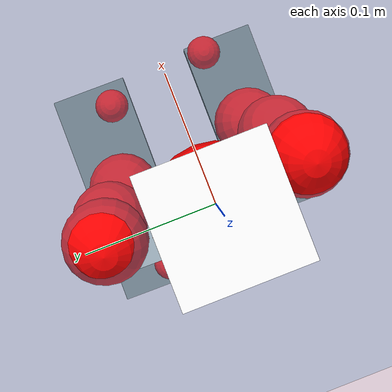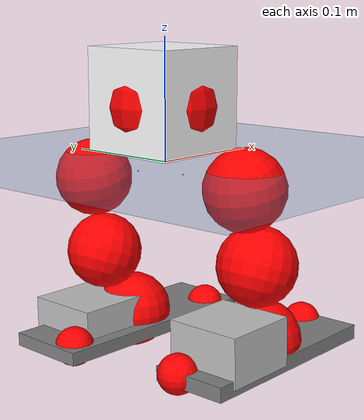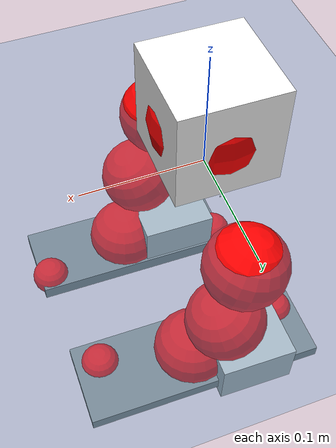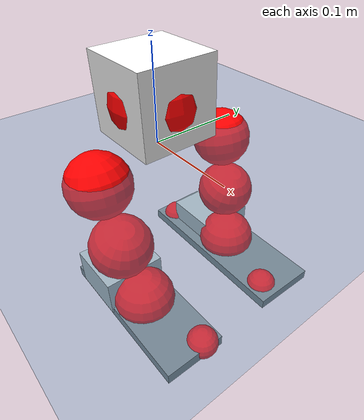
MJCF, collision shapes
<mujoco model="pi_12dof_release_v1">
  <compiler angle="radian" assetdir="assets" balanceinertia="true" inertiafromgeom="false"/>

  <option timestep="0.005" density="1.2" viscosity="2e-05"/>

  <size nkey="1"/>

  <visual>
    <quality shadowsize="8192"/>
    <map shadowclip="0.5"/>
  </visual>

  <default>
    <default class="/">
      <joint armature="0.01" damping="0.01" frictionloss="0.01"/>
      <geom contype="0" conaffinity="0" group="1" solref="-1000 -80"/>
      <site size="0.01 0.005 0.005" group="5"/>
      <general forcelimited="true" biastype="affine" gainprm="20" biasprm="0 -20 -0.5"/>
      <default class="foot">
        <geom size="0.0845 0.036 0.005" type="box" condim="6" group="4" priority="1" friction="0.9 0.2 0.2" solimp="0.015 1 0.005"/>
      </default>
      <default class="reward_collision_sphere">
        <geom group="5" rgba="1 0 0 1"/>
      </default>
    </default>
  </default>

  <asset>
    <texture type="skybox" colorspace="auto" name="//unnamed_texture_0" builtin="gradient" rgb1="0.95 0.95 0.95" rgb2="0.95 0.95 0.95" width="100" height="600"/>
    <texture type="2d" colorspace="auto" name="texplane" builtin="checker" rgb1="0.345 0.575 0.748" rgb2="0.345 0.575 0.748" markrgb="1 1 1" width="512" height="512"/>
    <material name="MatPlane" class="/" texture="texplane" texuniform="true" texrepeat="2 2" specular="0.9"/>
    <mesh name="baselink_1" class="/" file="baselink_1.STL"/>
    <mesh name="r_hip_pitch_link" class="/" file="r_hip_pitch_link.STL"/>
    <mesh name="r_hip_roll_link" class="/" file="r_hip_roll_link.STL"/>
    <mesh name="r_thigh_link" class="/" file="r_thigh_link.STL"/>
    <mesh name="r_calf_link" class="/" file="r_calf_link.STL"/>
    <mesh name="r_ankle_pitch_link" class="/" file="r_ankle_pitch_link.STL"/>
    <mesh name="r_ankle_roll_link" class="/" file="r_ankle_roll_link.STL"/>
    <mesh name="l_hip_pitch_link" class="/" file="l_hip_pitch_link.STL"/>
    <mesh name="l_hip_roll_link" class="/" file="l_hip_roll_link.STL"/>
    <mesh name="l_thigh_link" class="/" file="l_thigh_link.STL"/>
    <mesh name="l_calf_link" class="/" file="l_calf_link.STL"/>
    <mesh name="l_ankle_pitch_link" class="/" file="l_ankle_pitch_link.STL"/>
    <mesh name="l_ankle_roll_link" class="/" file="l_ankle_roll_link.STL"/>
  </asset>

  <worldbody>
    <geom name="floor" class="/" size="100 100 0.125" type="plane" group="0" material="MatPlane"/>
    <light name="toplight_shadow" class="/" pos="0 0 5" dir="0.0990148 0.0990148 -0.990148" type="directional" ambient="0.04 0.04 0.04" diffuse="0.55 0.55 0.55" specular="0.12 0.12 0.12"/>
    <light name="toplight_fill" class="/" pos="0 0 5" dir="0.0990148 0.0990148 -0.990148" type="directional" castshadow="false" ambient="0.04 0.04 0.04" diffuse="0.3 0.3 0.3" specular="0.08 0.08 0.08"/>
    <body name="trunk" pos="-0.00140821 0.00123206 0.0136749" quat="0.99998 0.00504427 -0.00365098 -0.00112755">
      <inertial pos="0.00242749 -0.0109026 0.0201094" quat="0.723565 0.0389139 0.0435726 0.687779" mass="1.13775" diaginertia="0.0210334 0.00280594 7.41966e-05"/>
      <joint name="//unnamed_joint_0" type="free"/>
      <geom name="//unnamed_geom_1" class="/" type="mesh" density="0" rgba="1 1 1 1" mesh="baselink_1"/>
      <geom name="//unnamed_geom_2" class="/" size="0.0415345 0.0415345 0.0415345" pos="0 0 0.037178" type="box" rgba="1 1 1 1"/>
      <geom name="//unnamed_geom_3" class="reward_collision_sphere" size="0.045688" pos="0 0 0.0325308"/>
      <site name="imu" class="/" pos="-0.0124769 -0.0387346 0.0512337" size="0.00830691"/>
      <camera name="track" class="/" pos="0 -1.63692 0" quat="0.707107 0.707107 0 0" mode="trackcom"/>
      <camera name="ego_camera" class="/" pos="0.0906663 0 0.0836506" quat="-0.5 -0.5 0.5 0.5"/>
      <body name="r_hip_pitch_link" pos="-0.00232969 -0.0237599 -0.0207258" quat="0.99219 -4.70676e-05 -0.124734 -5.12752e-05">
        <inertial pos="0.0132217 -0.0455608 0.0131046" quat="-0.0787315 0.717858 -0.0502714 0.689894" mass="0.229486" diaginertia="0.000269848 4.13791e-05 1.96814e-06"/>
        <joint name="r_hip_pitch_joint" class="/" pos="0 0 0" axis="-0.0255502 -0.999664 -0.00443509" stiffness="0.0105742" range="-1.79753 1.32062" armature="0.00821508" damping="0.0184663" frictionloss="0.00746274"/>
        <geom name="//unnamed_geom_4" class="/" type="mesh" density="0" rgba="0.75294 0.75294 0.75294 1" mesh="r_hip_pitch_link"/>
        <geom name="//unnamed_geom_5" class="/" size="0.000415345 0.000415345 0.000415345" type="box" rgba="0.75294 0.75294 0.75294 1"/>
        <body name="r_hip_roll_link" pos="0.0109143 -0.0524821 -0.0100184" quat="1 -6.67678e-05 -0.000190467 -0.000793157">
          <inertial pos="0.00129153 0.000498504 -0.0284009" quat="0.720942 -0.080133 -0.0839427 0.68321" mass="0.244893" diaginertia="0.000953895 0.000116326 3.60898e-06"/>
          <joint name="r_hip_roll_joint" class="/" pos="0 0 0" axis="-0.998894 0.0388424 -0.026493" stiffness="0.00219735" range="-0.088846 0.494593" armature="0.0142262" damping="0.00474486" frictionloss="0.0049656"/>
          <geom name="//unnamed_geom_6" class="/" type="mesh" density="0" rgba="0.75294 0.75294 0.75294 1" mesh="r_hip_roll_link"/>
          <geom name="//unnamed_geom_7" class="/" size="0.000415345 0.000415345 0.000415345" type="box" rgba="0.75294 0.75294 0.75294 1"/>
          <geom name="//unnamed_geom_8" class="reward_collision_sphere" size="0.0332276"/>
          <body name="r_thigh_link" pos="-0.00393701 0.00118272 -0.0321288" quat="1 -0.000861079 -0.000423448 -0.000233263">
            <inertial pos="0.014857 0.0139467 -0.023265" quat="0.737536 0.675308 -0.000237147 6.66084e-05" mass="0.0652293" diaginertia="0.000371006 3.42247e-05 1.23114e-06"/>
            <joint name="r_thigh_joint" class="/" pos="0 0 0" axis="0.00891346 0.00463894 -0.99995" range="-0.16707 0.37308" armature="0.0135136" damping="0" frictionloss="0.00919414"/>
            <geom name="//unnamed_geom_9" class="/" type="mesh" density="0" rgba="0.75294 0.75294 0.75294 1" mesh="r_thigh_link"/>
            <geom name="//unnamed_geom_10" class="/" size="0.000415345 0.000415345 0.000415345" type="box" rgba="0.75294 0.75294 0.75294 1"/>
            <body name="r_calf_link" pos="0.00746051 0.00178484 -0.0361801" quat="0.948862 -0.00550837 0.315638 -0.0020876">
              <inertial pos="0.00502989 0.00020527 -0.0296613" quat="0.997327 0.0115554 -0.0274796 0.0667099" mass="0.405987" diaginertia="0.00930526 0.00134174 3.90335e-06"/>
              <joint name="r_calf_joint" class="/" pos="0 0 0" axis="0.00560197 -0.999837 0.0171583" stiffness="0.0206894" range="-1.67011 0.506599" armature="0.00850886" damping="0.0175137" frictionloss="0.00800156"/>
              <geom name="//unnamed_geom_11" class="/" type="mesh" density="0" rgba="0.75294 0.75294 0.75294 1" mesh="r_calf_link"/>
              <geom name="//unnamed_geom_12" class="/" size="0.000415345 0.000415345 0.000415345" type="box" rgba="0.75294 0.75294 0.75294 1"/>
              <geom name="//unnamed_geom_13" class="reward_collision_sphere" size="0.0332276"/>
              <body name="r_ankle_pitch_link" pos="-0.000597719 0.00785387 -0.0647997" quat="0.979532 0.00117906 -0.201284 0.000849636">
                <inertial pos="0.0121321 0.00346461 0.00446046" quat="-0.00753868 0.699358 -0.0149818 0.714574" mass="0.0870326" diaginertia="0.000787126 9.11403e-05 2.37235e-06"/>
                <joint name="r_ankle_pitch_joint" class="/" pos="0 0 0" axis="-0.0380439 -0.999123 0.0175026" range="-1.15235 0.502519" armature="0.0105332" damping="0" frictionloss="0.00749573"/>
                <geom name="//unnamed_geom_14" class="/" type="mesh" density="0" rgba="0.75294 0.75294 0.75294 1" mesh="r_ankle_pitch_link"/>
                <geom name="//unnamed_geom_15" class="/" size="0.0323969 0.0332276 0.0207673" type="box" rgba="0.75294 0.75294 0.75294 1"/>
                <body name="r_ankle_roll_link" pos="0.10434 0.00194608 -2.89654e-06" quat="0.999999 -0.000868996 0.000854541 0.000693409">
                  <inertial pos="-0.0252995 0.0124828 -0.0171879" quat="0.514622 0.420771 0.426302 0.6135" mass="0.352037" diaginertia="0.00338513 0.000373791 7.83615e-06"/>
                  <joint name="r_ankle_roll_joint" class="/" pos="0 0 0" axis="-0.999996 0.00253767 -0.0011431" range="0.141542 -0.00464741" armature="0.0131783" damping="0.0336183" frictionloss="0.0136176"/>
                  <geom name="//unnamed_geom_16" class="/" type="mesh" density="0" rgba="0.75294 0.75294 0.75294 1" mesh="r_ankle_roll_link"/>
                  <geom name="//unnamed_geom_17" class="/" type="mesh" rgba="0.75294 0.75294 0.75294 1" mesh="r_ankle_roll_link"/>
                  <geom name="right_foot" class="foot" size="0.0898658 0.033505 0.00623438" pos="-0.0616531 0 -0.0204479"/>
                  <geom name="//unnamed_geom_19" class="reward_collision_sphere" size="0.0332276" pos="-0.0604442 0 -0.00929451"/>
                  <geom name="//unnamed_geom_20" class="reward_collision_sphere" size="0.0166138" pos="0.0181333 0.0163692 -0.018589"/>
                  <geom name="//unnamed_geom_21" class="reward_collision_sphere" size="0.0166138" pos="-0.145066 0.0163692 -0.018589"/>
                  <site name="right_foot" class="foot" pos="-0.0616531 0 -0.0204479" size="0.00830691"/>
                </body>
              </body>
            </body>
          </body>
        </body>
      </body>
      <body name="l_hip_pitch_link" pos="-0.000581892 0.0280632 -0.0247123" quat="0.992264 -0.000941315 -0.124127 -0.00185781">
        <inertial pos="0.00526538 0.0566624 0.0136059" quat="-0.0156453 0.696294 0.0335919 0.716799" mass="0.248175" diaginertia="0.000392941 3.9405e-05 2.69526e-06"/>
        <joint name="l_hip_pitch_joint" class="/" pos="0 0 0" axis="-0.0533698 0.998364 0.0205136" stiffness="0.0475102" range="-0.978789 1.89219" armature="0.00828166" damping="0.0563221" frictionloss="0.00536346"/>
        <geom name="//unnamed_geom_22" class="/" type="mesh" density="0" rgba="0.75294 0.75294 0.75294 1" mesh="l_hip_pitch_link"/>
        <geom name="//unnamed_geom_23" class="/" size="0.000415345 0.000415345 0.000415345" type="box" rgba="0.75294 0.75294 0.75294 1"/>
        <body name="l_hip_roll_link" pos="7.20788e-05 0.0579253 -0.0133496" quat="0.999989 -0.003862 -0.000163803 -0.00282426">
          <inertial pos="-0.0169304 0.0097958 -0.013999" quat="0.698118 -0.074275 -0.0786014 0.707768" mass="0.181041" diaginertia="0.00058881 8.11558e-05 2.01005e-06"/>
          <joint name="l_hip_roll_joint" class="/" pos="0 0 0" axis="-0.999995 0.00311369 0.000950339" stiffness="0.0136492" range="-0.504738 0.27182" armature="0.0117858" damping="0" frictionloss="0.00847116"/>
          <geom name="//unnamed_geom_24" class="/" type="mesh" density="0" rgba="0.75294 0.75294 0.75294 1" mesh="l_hip_roll_link"/>
          <geom name="//unnamed_geom_25" class="/" size="0.000415345 0.000415345 0.000415345" type="box" rgba="0.75294 0.75294 0.75294 1"/>
          <geom name="//unnamed_geom_26" class="reward_collision_sphere" size="0.0332276"/>
          <body name="l_thigh_link" pos="0.00790952 0.00107914 -0.0239684" quat="0.999987 -0.00143397 -0.00486272 -0.000895449">
            <inertial pos="0.0133266 -0.0100602 -0.00818376" quat="0.657482 0.751339 0.000917055 0.0566213" mass="0.0721734" diaginertia="0.000365574 4.21835e-05 1.2996e-06"/>
            <joint name="l_thigh_joint" class="/" pos="0 0 0" axis="-0.000560309 -0.00215118 -0.999998" stiffness="0.0120391" range="-0.610351 0.327027" armature="0.010245" damping="0.0231632" frictionloss="0.00245652"/>
            <geom name="//unnamed_geom_27" class="/" type="mesh" density="0" rgba="0.75294 0.75294 0.75294 1" mesh="l_thigh_link"/>
            <geom name="//unnamed_geom_28" class="/" size="0.000415345 0.000415345 0.000415345" type="box" rgba="0.75294 0.75294 0.75294 1"/>
            <body name="l_calf_link" pos="-0.0147292 -0.000558437 -0.0445957" quat="0.947596 -1.62927e-06 0.319472 -0.000118937">
              <inertial pos="0.0109859 0.0111025 -0.0360565" quat="0.99806 -0.0320624 -0.0455488 0.0278168" mass="0.458732" diaginertia="0.0063154 0.00107455 2.85708e-06"/>
              <joint name="l_calf_joint" class="/" pos="0 0 0" axis="-0.0129233 0.999336 -0.0340648" stiffness="0.0547078" range="-0.418274 1.40156" armature="0.00703982" damping="0.0504308" frictionloss="0.00476717"/>
              <geom name="//unnamed_geom_29" class="/" type="mesh" density="0" rgba="0.75294 0.75294 0.75294 1" mesh="l_calf_link"/>
              <geom name="//unnamed_geom_30" class="/" size="0.000415345 0.000415345 0.000415345" type="box" rgba="0.75294 0.75294 0.75294 1"/>
              <geom name="//unnamed_geom_31" class="reward_collision_sphere" size="0.0332276"/>
              <body name="l_ankle_pitch_link" pos="0.00156604 -0.00412934 -0.0619452" quat="0.980122 -0.000537224 -0.198393 -0.000350417">
                <inertial pos="-0.000107933 0.0064684 0.0119539" quat="-0.0453688 0.703544 -0.00153062 0.7092" mass="0.125177" diaginertia="0.000717459 8.4673e-05 2.62752e-06"/>
                <joint name="l_ankle_pitch_joint" class="/" pos="0 0 0" axis="0.00215689 0.999996 0.00207978" range="-0.331267 1.30059" armature="0.0111069" damping="0.0770552" frictionloss="0.0126172"/>
                <geom name="//unnamed_geom_32" class="/" type="mesh" density="0" rgba="0.75294 0.75294 0.75294 1" mesh="l_ankle_pitch_link"/>
                <geom name="//unnamed_geom_33" class="/" size="0.0323969 0.0332276 0.0207673" type="box" rgba="0.75294 0.75294 0.75294 1"/>
                <body name="l_ankle_roll_link" pos="0.103729 -0.00996493 0.0095885" quat="0.999973 0.00467116 0.00569728 0.000780982">
                  <inertial pos="-0.0333267 -0.0014225 -0.00709896" quat="0.560069 0.399627 0.403733 0.60301" mass="0.276019" diaginertia="0.00269532 0.000310619 6.40242e-06"/>
                  <joint name="l_ankle_roll_joint" class="/" pos="0 0 0" axis="-0.999981 0.00574284 -0.00228559" stiffness="0.0147066" range="-0.192777 0.445846" armature="0.00834843" damping="0.0517407" frictionloss="0.0110623"/>
                  <geom name="//unnamed_geom_34" class="/" type="mesh" density="0" rgba="0.75294 0.75294 0.75294 1" mesh="l_ankle_roll_link"/>
                  <geom name="//unnamed_geom_35" class="/" type="mesh" rgba="0.75294 0.75294 0.75294 1" mesh="l_ankle_roll_link"/>
                  <geom name="left_foot" class="foot" size="0.101908 0.0356621 0.0056304" pos="-0.0616531 0 -0.0204479"/>
                  <geom name="//unnamed_geom_37" class="reward_collision_sphere" size="0.0332276" pos="-0.0604442 0 -0.00929451"/>
                  <geom name="//unnamed_geom_38" class="reward_collision_sphere" size="0.0166138" pos="0.0181333 -0.0163692 -0.018589"/>
                  <geom name="//unnamed_geom_39" class="reward_collision_sphere" size="0.0166138" pos="-0.145066 -0.0163692 -0.018589"/>
                  <site name="left_foot" class="foot" pos="-0.0616531 0 -0.0204479" size="0.00830691"/>
                </body>
              </body>
            </body>
          </body>
        </body>
      </body>
    </body>
  </worldbody>

  <contact>
    <pair class="/" geom1="floor" geom2="right_foot" name="//unnamed_contact_1"/>
    <pair class="/" geom1="floor" geom2="left_foot" name="//unnamed_contact_0"/>
  </contact>

  <actuator>
    <general name="r_hip_pitch_joint" class="/" joint="r_hip_pitch_joint" forcerange="-9.93333 9.93333" gainprm="22.7246" biasprm="0 -22.7246 -0.540259"/>
    <general name="r_hip_roll_joint" class="/" joint="r_hip_roll_joint" forcerange="-26.8049 26.8049" gainprm="22.7246" biasprm="0 -22.7246 -0.540259"/>
    <general name="r_thigh_joint" class="/" joint="r_thigh_joint" forcerange="-16.6777 16.6777" gainprm="22.7246" biasprm="0 -22.7246 -0.540259"/>
    <general name="r_calf_joint" class="/" joint="r_calf_joint" forcerange="-7.77925 7.77925" gainprm="22.7246" biasprm="0 -22.7246 -0.540259"/>
    <general name="r_ankle_pitch_joint" class="/" joint="r_ankle_pitch_joint" forcerange="-21.3515 21.3515" gainprm="22.7246" biasprm="0 -22.7246 -0.540259"/>
    <general name="r_ankle_roll_joint" class="/" joint="r_ankle_roll_joint" forcerange="-26.7078 26.7078" gainprm="22.7246" biasprm="0 -22.7246 -0.540259"/>
    <general name="l_hip_pitch_joint" class="/" joint="l_hip_pitch_joint" forcerange="-16.9874 16.9874" gainprm="22.7246" biasprm="0 -22.7246 -0.540259"/>
    <general name="l_hip_roll_joint" class="/" joint="l_hip_roll_joint" forcerange="-15.9072 15.9072" gainprm="22.7246" biasprm="0 -22.7246 -0.540259"/>
    <general name="l_thigh_joint" class="/" joint="l_thigh_joint" forcerange="-12.5008 12.5008" gainprm="22.7246" biasprm="0 -22.7246 -0.540259"/>
    <general name="l_calf_joint" class="/" joint="l_calf_joint" forcerange="-18.7902 18.7902" gainprm="22.7246" biasprm="0 -22.7246 -0.540259"/>
    <general name="l_ankle_pitch_joint" class="/" joint="l_ankle_pitch_joint" forcerange="-12.6973 12.6973" gainprm="22.7246" biasprm="0 -22.7246 -0.540259"/>
    <general name="l_ankle_roll_joint" class="/" joint="l_ankle_roll_joint" forcerange="-16.6799 16.6799" gainprm="22.7246" biasprm="0 -22.7246 -0.540259"/>
  </actuator>

  <sensor>
    <gyro site="imu" name="imu_angular_velocity"/>
    <velocimeter site="imu" name="imu_linear_velocity"/>
    <framelinvel objtype="site" objname="left_foot" name="left_foot_global_linear_velocity"/>
    <framelinvel objtype="site" objname="right_foot" name="right_foot_global_linear_velocity"/>
  </sensor>

  <keyframe>
    <key name="home" qpos="0 0 0.291 1 0 0 0 0.4 0 0 -0.8 0.4 0 -0.4 0 0 0.8 -0.4 0"/>
  </keyframe>
</mujoco>
